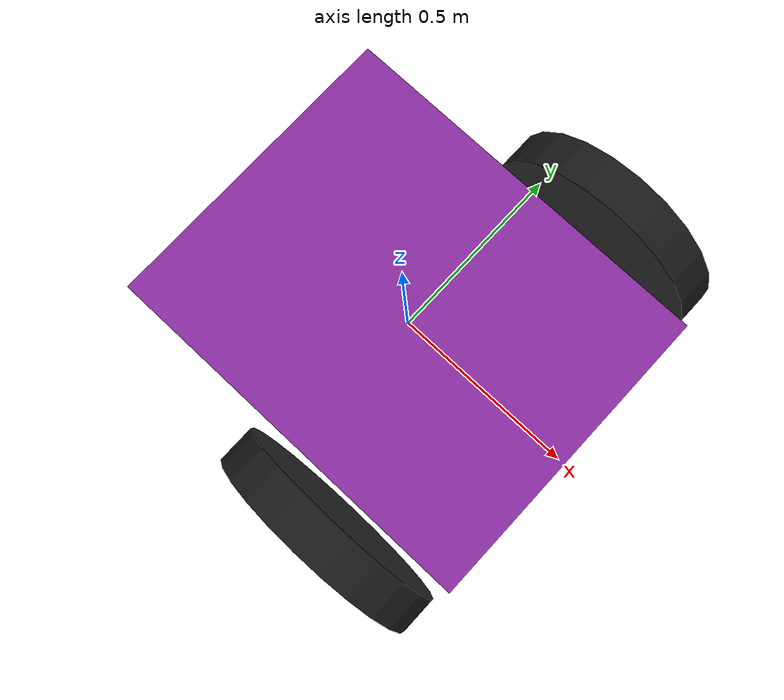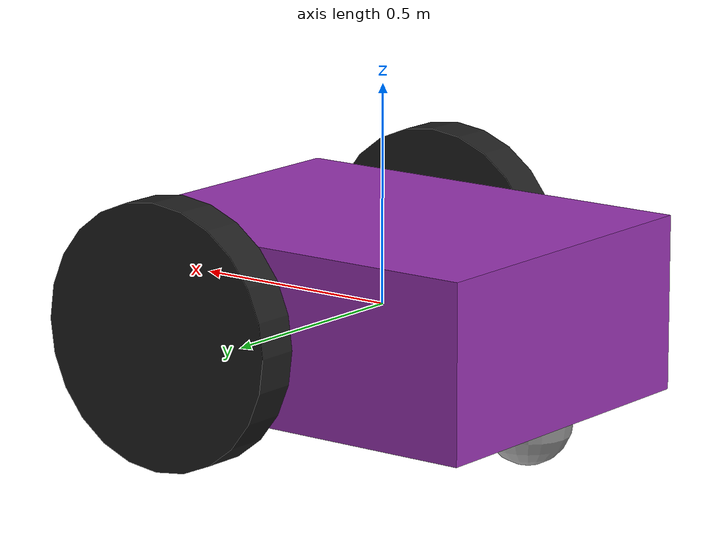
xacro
<?xml version="1.0"?>
<robot xmlns:xacro="http://www.ros.org/wiki/xacro" >
        <!-- Constants -->
        <xacro:property name="PI" value="3.14159265359" />

        <xacro:property name="BASE_X" value="1.0" />
        <xacro:property name="BASE_Y" value="0.8" />
        <xacro:property name="BASE_Z" value="0.4" />
        <xacro:property name="BASE_M" value="4" />

        <xacro:property name="CASTER_OFF_X" value="-0.4" />
        <xacro:property name="CASTER_OFF_Z" value="-0.2" />
        <xacro:property name="CASTER_R" value="0.1" />
        <xacro:property name="CASTER_M" value="1.0" />

        <xacro:property name="WHEEL_OFF_X" value="0.2" />
        <xacro:property name="WHEEL_OFF_Y" value="0.5" />
        <xacro:property name="WHEEL_R" value="0.3" />
        <xacro:property name="WHEEL_L" value="0.1" />
        <xacro:property name="WHEEL_M" value="0.5" />

        <xacro:property name="LIDAR_OFF_Z" value="0.35" />
        <xacro:property name="LIDAR_R" value="0.035" />
        <xacro:property name="LIDAR_L" value="0.02" />
        <xacro:property name="LIDAR_M" value="0.17" />

        <!-- Wheel macro -->
        <xacro:macro name="Wheel" params="prefix y_reflect">
            <joint name="${prefix}_wheel_joint" type="continuous">
                <parent link="base_link" />
                <child link="${prefix}_wheel" />
                <origin xyz="${WHEEL_OFF_X} ${y_reflect*WHEEL_OFF_Y} 0" rpy="${-PI/2} 0 0" />
                <axis xyz="0 0 1" />
            </joint>

            <link name="${prefix}_wheel">
                <visual>
                    <geometry>
                        <cylinder radius="${WHEEL_R}" length="${WHEEL_L}" />
                    </geometry>
                    <material name="black" />
                </visual>

                <collision>
                    <geometry>
                        <cylinder radius="${WHEEL_R}" length="${WHEEL_L}" />
                    </geometry>
                </collision>

                <xacro:CylinderInertial m="${WHEEL_M}" r="${WHEEL_R}" l="${WHEEL_L}" />
            </link>
            <gazebo reference="${prefix}_wheel">
                <material>Gazebo/Black</material>
            </gazebo>
        </xacro:macro>

        <!-- Start Modelling -->
        <link name="base_link">
            <visual>
                <geometry>
                    <box size="${BASE_X} ${BASE_Y} ${BASE_Z}"/>
                </geometry>
                <material name="purple"/>
            </visual>

            <collision>
                <geometry>
                    <box size="${BASE_X} ${BASE_Y} ${BASE_Z}"/>
                </geometry>
            </collision>

            <xacro:BoxInertial m="${BASE_M}" x="${BASE_X}" y="${BASE_Y}" z="${BASE_Z}" />
        </link>
        <gazebo reference="base_link">
            <material>Gazebo/Purple</material>
        </gazebo>

        <joint name="footprint_joint" type="fixed">
            <parent link="base_link"/>
            <child link="base_footprint"/>
            <origin xyz="0 0 -${BASE_Z/2 + CASTER_R}"/>
        </joint>

        <link name="base_footprint" />

        <joint name="caster_joint" type="fixed">
            <parent link="base_link"/>
            <child link="caster_ball"/>
            <origin xyz="${CASTER_OFF_X} 0 ${CASTER_OFF_Z}"/>
        </joint>

        <link name="caster_ball">
            <visual>
                <geometry>
                    <sphere radius="${CASTER_R}"/>
                </geometry>
                <material name="gray"/>
            </visual>

            <collision>
                <geometry>
                    <sphere radius="${CASTER_R}"/>
                </geometry>
            </collision>

            <xacro:SphereInertial m="${CASTER_M}" r="${CASTER_R}" />
        </link>

        <gazebo reference="caster_ball">
            <material>Gazebo/Gray</material>
            <mu1>0.0001</mu1>
            <mu2>0.0001</mu2>
        </gazebo>

        <xacro:Wheel prefix="left" y_reflect="1" />
        <xacro:Wheel prefix="right" y_reflect="-1" />

</robot>
